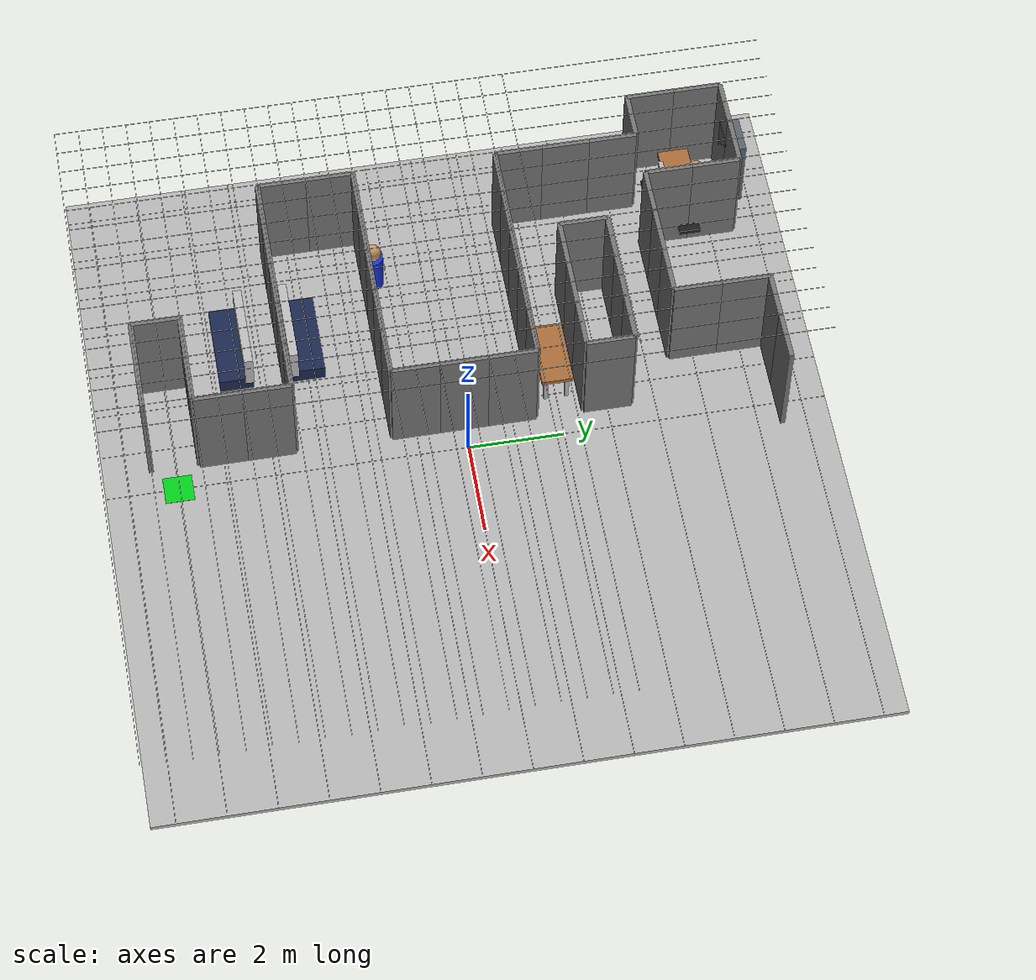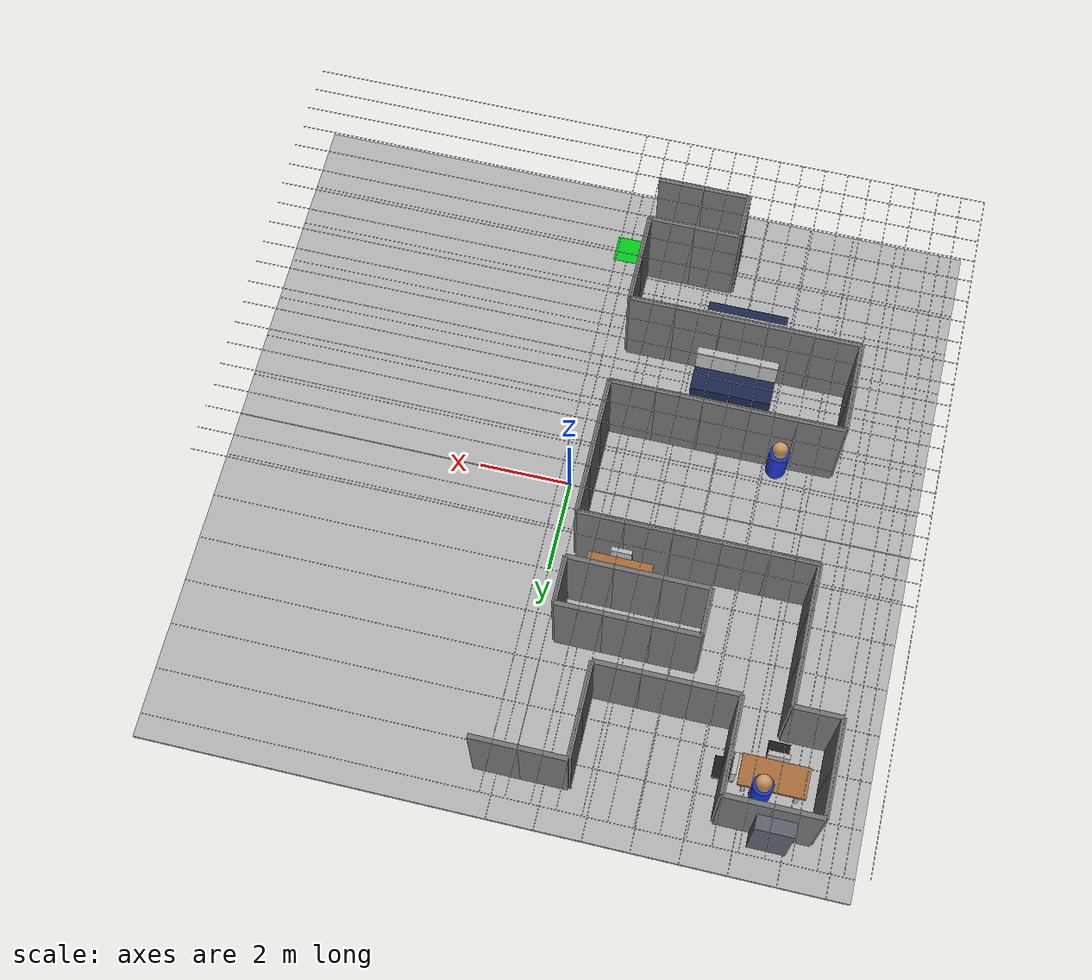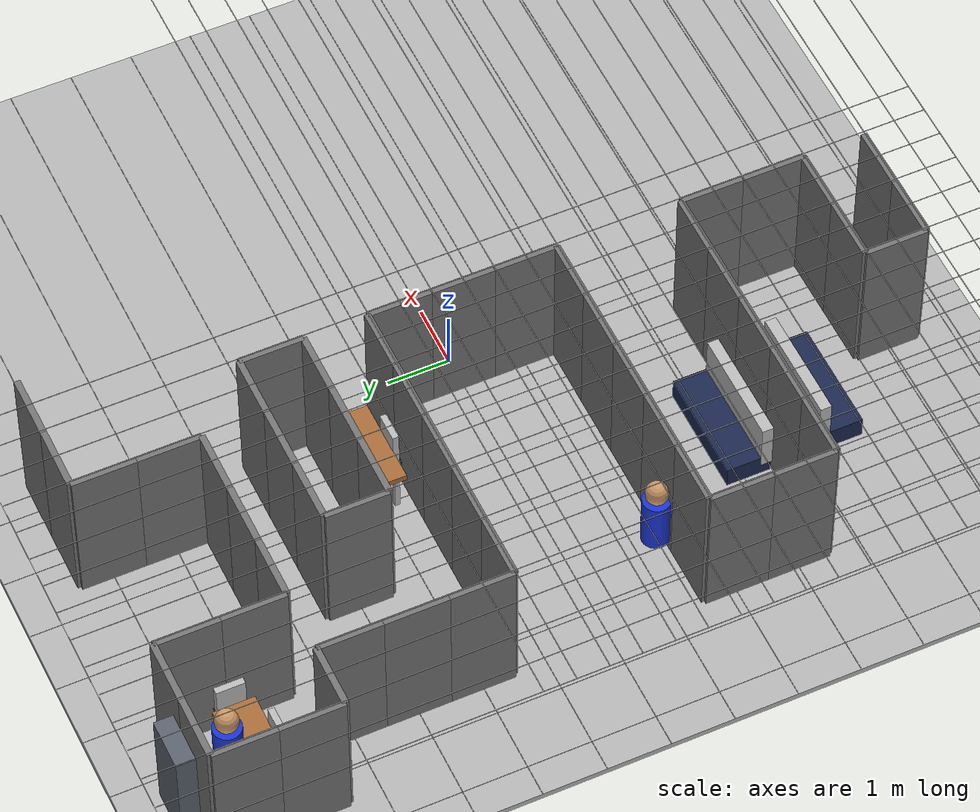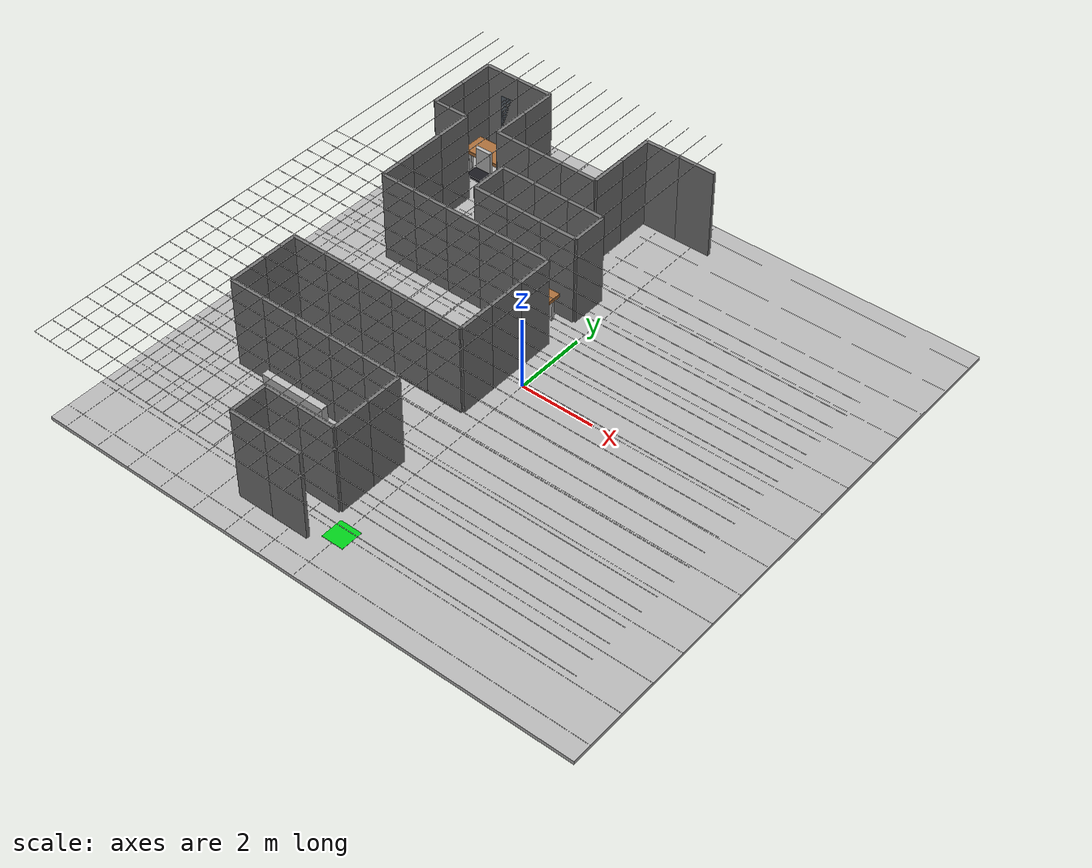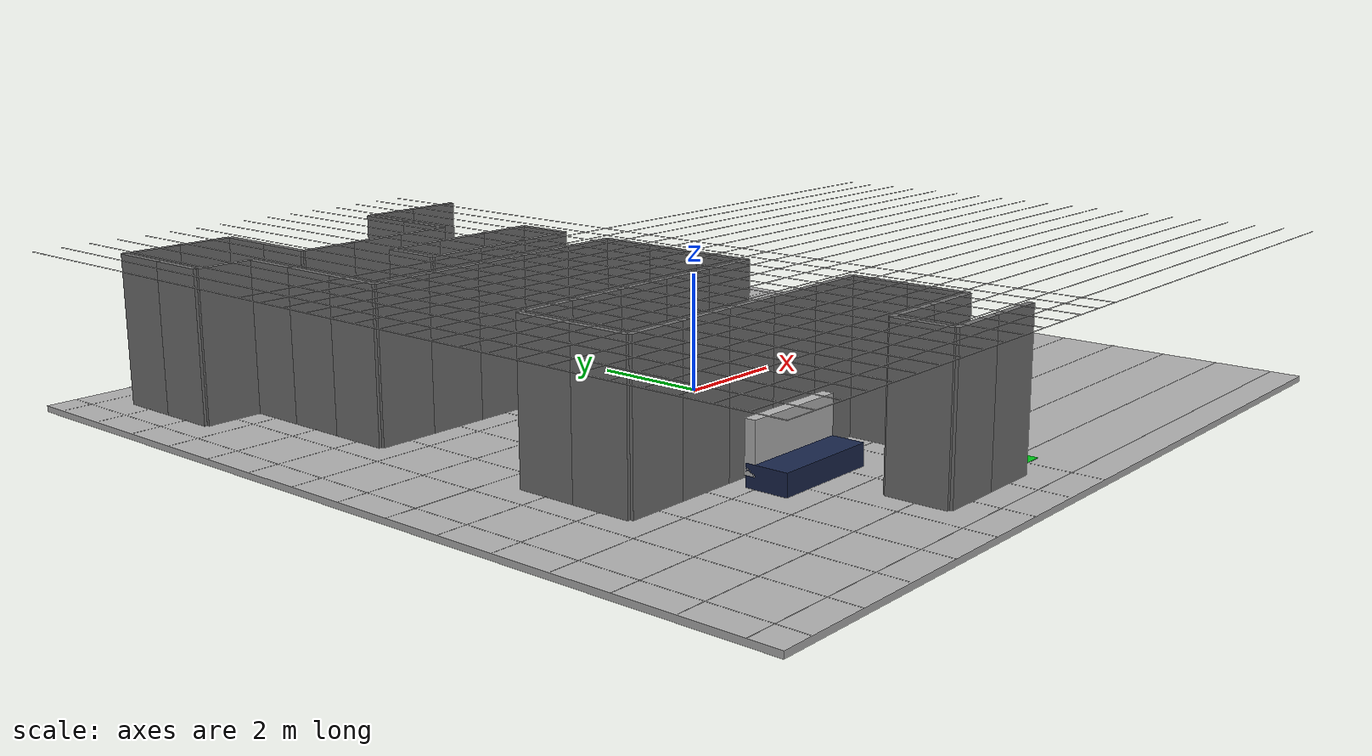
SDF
<sdf version="1.9">
 <world name="nidar_airmouse_building">
  <model name="floor">
   <static>true</static>
   <pose>0 0 -0.05 0 0 0</pose>
   <link name="link">
    <collision name="collision"><geometry><box><size>15 15 0.10</size></box></geometry></collision>
    <visual name="visual">
     <geometry><box><size>15 15 0.10</size></box></geometry>
     <material><ambient>0.65 0.65 0.65 1</ambient><diffuse>0.70 0.70 0.70 1</diffuse></material>
    </visual>
   </link>
  </model>
  <model name="grid_x_0">
   <static>true</static>
   <pose>-7 0 0.006 0 0 0</pose>
   <link name="link">
    <visual name="visual">
     <geometry><box><size>0.008 15 0.002</size></box></geometry>
     <material><ambient>0.25 0.25 0.25 0.35</ambient></material>
    </visual>
   </link>
  </model>
  <model name="grid_x_1">
   <static>true</static>
   <pose>-6 0 0.006 0 0 0</pose>
   <link name="link">
    <visual name="visual">
     <geometry><box><size>0.008 15 0.002</size></box></geometry>
     <material><ambient>0.25 0.25 0.25 0.35</ambient></material>
    </visual>
   </link>
  </model>
  <model name="grid_x_2">
   <static>true</static>
   <pose>-5 0 0.006 0 0 0</pose>
   <link name="link">
    <visual name="visual">
     <geometry><box><size>0.008 15 0.002</size></box></geometry>
     <material><ambient>0.25 0.25 0.25 0.35</ambient></material>
    </visual>
   </link>
  </model>
  <model name="grid_x_3">
   <static>true</static>
   <pose>-4 0 0.006 0 0 0</pose>
   <link name="link">
    <visual name="visual">
     <geometry><box><size>0.008 15 0.002</size></box></geometry>
     <material><ambient>0.25 0.25 0.25 0.35</ambient></material>
    </visual>
   </link>
  </model>
  <model name="grid_x_4">
   <static>true</static>
   <pose>-3 0 0.006 0 0 0</pose>
   <link name="link">
    <visual name="visual">
     <geometry><box><size>0.008 15 0.002</size></box></geometry>
     <material><ambient>0.25 0.25 0.25 0.35</ambient></material>
    </visual>
   </link>
  </model>
  <model name="grid_x_5">
   <static>true</static>
   <pose>-2 0 0.006 0 0 0</pose>
   <link name="link">
    <visual name="visual">
     <geometry><box><size>0.008 15 0.002</size></box></geometry>
     <material><ambient>0.25 0.25 0.25 0.35</ambient></material>
    </visual>
   </link>
  </model>
  <model name="grid_x_6">
   <static>true</static>
   <pose>-1 0 0.006 0 0 0</pose>
   <link name="link">
    <visual name="visual">
     <geometry><box><size>0.008 15 0.002</size></box></geometry>
     <material><ambient>0.25 0.25 0.25 0.35</ambient></material>
    </visual>
   </link>
  </model>
  <model name="grid_x_7">
   <static>true</static>
   <pose>0 0 0.006 0 0 0</pose>
   <link name="link">
    <visual name="visual">
     <geometry><box><size>0.008 15 0.002</size></box></geometry>
     <material><ambient>0.25 0.25 0.25 0.35</ambient></material>
    </visual>
   </link>
  </model>
  <model name="grid_y_15">
   <static>true</static>
   <pose>0 -7 0.007 0 0 0</pose>
   <link name="link">
    <visual name="visual">
     <geometry><box><size>15 0.008 0.002</size></box></geometry>
     <material><ambient>0.25 0.25 0.25 0.35</ambient></material>
    </visual>
   </link>
  </model>
  <model name="grid_y_16">
   <static>true</static>
   <pose>0 -6 0.007 0 0 0</pose>
   <link name="link">
    <visual name="visual">
     <geometry><box><size>15 0.008 0.002</size></box></geometry>
     <material><ambient>0.25 0.25 0.25 0.35</ambient></material>
    </visual>
   </link>
  </model>
  <model name="grid_y_17">
   <static>true</static>
   <pose>0 -5 0.007 0 0 0</pose>
   <link name="link">
    <visual name="visual">
     <geometry><box><size>15 0.008 0.002</size></box></geometry>
     <material><ambient>0.25 0.25 0.25 0.35</ambient></material>
    </visual>
   </link>
  </model>
  <model name="grid_y_18">
   <static>true</static>
   <pose>0 -4 0.007 0 0 0</pose>
   <link name="link">
    <visual name="visual">
     <geometry><box><size>15 0.008 0.002</size></box></geometry>
     <material><ambient>0.25 0.25 0.25 0.35</ambient></material>
    </visual>
   </link>
  </model>
  <model name="grid_y_19">
   <static>true</static>
   <pose>0 -3 0.007 0 0 0</pose>
   <link name="link">
    <visual name="visual">
     <geometry><box><size>15 0.008 0.002</size></box></geometry>
     <material><ambient>0.25 0.25 0.25 0.35</ambient></material>
    </visual>
   </link>
  </model>
  <model name="grid_y_20">
   <static>true</static>
   <pose>0 -2 0.007 0 0 0</pose>
   <link name="link">
    <visual name="visual">
     <geometry><box><size>15 0.008 0.002</size></box></geometry>
     <material><ambient>0.25 0.25 0.25 0.35</ambient></material>
    </visual>
   </link>
  </model>
  <model name="grid_y_21">
   <static>true</static>
   <pose>0 -1 0.007 0 0 0</pose>
   <link name="link">
    <visual name="visual">
     <geometry><box><size>15 0.008 0.002</size></box></geometry>
     <material><ambient>0.25 0.25 0.25 0.35</ambient></material>
    </visual>
   </link>
  </model>
  <model name="grid_y_22">
   <static>true</static>
   <pose>0 0 0.007 0 0 0</pose>
   <link name="link">
    <visual name="visual">
     <geometry><box><size>15 0.008 0.002</size></box></geometry>
     <material><ambient>0.25 0.25 0.25 0.35</ambient></material>
    </visual>
   </link>
  </model>
  <model name="grid_y_23">
   <static>true</static>
   <pose>0 1 0.007 0 0 0</pose>
   <link name="link">
    <visual name="visual">
     <geometry><box><size>15 0.008 0.002</size></box></geometry>
     <material><ambient>0.25 0.25 0.25 0.35</ambient></material>
    </visual>
   </link>
  </model>
  <model name="grid_y_24">
   <static>true</static>
   <pose>0 2 0.007 0 0 0</pose>
   <link name="link">
    <visual name="visual">
     <geometry><box><size>15 0.008 0.002</size></box></geometry>
     <material><ambient>0.25 0.25 0.25 0.35</ambient></material>
    </visual>
   </link>
  </model>
  <model name="grid_y_25">
   <static>true</static>
   <pose>0 3 0.007 0 0 0</pose>
   <link name="link">
    <visual name="visual">
     <geometry><box><size>15 0.008 0.002</size></box></geometry>
     <material><ambient>0.25 0.25 0.25 0.35</ambient></material>
    </visual>
   </link>
  </model>
  <model name="grid_y_26">
   <static>true</static>
   <pose>0 4 0.007 0 0 0</pose>
   <link name="link">
    <visual name="visual">
     <geometry><box><size>15 0.008 0.002</size></box></geometry>
     <material><ambient>0.25 0.25 0.25 0.35</ambient></material>
    </visual>
   </link>
  </model>
  <model name="grid_y_27">
   <static>true</static>
   <pose>0 5 0.007 0 0 0</pose>
   <link name="link">
    <visual name="visual">
     <geometry><box><size>15 0.008 0.002</size></box></geometry>
     <material><ambient>0.25 0.25 0.25 0.35</ambient></material>
    </visual>
   </link>
  </model>
  <model name="grid_y_28">
   <static>true</static>
   <pose>0 6 0.007 0 0 0</pose>
   <link name="link">
    <visual name="visual">
     <geometry><box><size>15 0.008 0.002</size></box></geometry>
     <material><ambient>0.25 0.25 0.25 0.35</ambient></material>
    </visual>
   </link>
  </model>
  <model name="grid_y_29">
   <static>true</static>
   <pose>0 7 0.007 0 0 0</pose>
   <link name="link">
    <visual name="visual">
     <geometry><box><size>15 0.008 0.002</size></box></geometry>
     <material><ambient>0.25 0.25 0.25 0.35</ambient></material>
    </visual>
   </link>
  </model>
  <model name="wall_0">
   <static>true</static>
   <pose>-6.0 6.5 1.25
            0 0 0</pose>
   <link name="link">
    <collision name="collision"><geometry><box><size>1.0 0.1 2.5</size></box></geometry></collision>
    <visual name="visual">
     <geometry><box><size>1.0 0.1 2.5</size></box></geometry>
     <material><ambient>0.35 0.35 0.35 1</ambient><diffuse>0.45 0.45 0.45 1</diffuse></material>
    </visual>
   </link>
  </model>
  <model name="wall_1">
   <static>true</static>
   <pose>-6.5 6.0 1.25
            0 0 0</pose>
   <link name="link">
    <collision name="collision"><geometry><box><size>0.1 1.0 2.5</size></box></geometry></collision>
    <visual name="visual">
     <geometry><box><size>0.1 1.0 2.5</size></box></geometry>
     <material><ambient>0.35 0.35 0.35 1</ambient><diffuse>0.45 0.45 0.45 1</diffuse></material>
    </visual>
   </link>
  </model>
  <model name="wall_2">
   <static>true</static>
   <pose>-5.0 6.5 1.25
            0 0 0</pose>
   <link name="link">
    <collision name="collision"><geometry><box><size>1.0 0.1 2.5</size></box></geometry></collision>
    <visual name="visual">
     <geometry><box><size>1.0 0.1 2.5</size></box></geometry>
     <material><ambient>0.35 0.35 0.35 1</ambient><diffuse>0.45 0.45 0.45 1</diffuse></material>
    </visual>
   </link>
  </model>
  <model name="wall_3">
   <static>true</static>
   <pose>-4.5 6.0 1.25
            0 0 0</pose>
   <link name="link">
    <collision name="collision"><geometry><box><size>0.1 1.0 2.5</size></box></geometry></collision>
    <visual name="visual">
     <geometry><box><size>0.1 1.0 2.5</size></box></geometry>
     <material><ambient>0.35 0.35 0.35 1</ambient><diffuse>0.45 0.45 0.45 1</diffuse></material>
    </visual>
   </link>
  </model>
  <model name="wall_4">
   <static>true</static>
   <pose>-1.0 6.5 1.25
            0 0 0</pose>
   <link name="link">
    <collision name="collision"><geometry><box><size>1.0 0.1 2.5</size></box></geometry></collision>
    <visual name="visual">
     <geometry><box><size>1.0 0.1 2.5</size></box></geometry>
     <material><ambient>0.35 0.35 0.35 1</ambient><diffuse>0.45 0.45 0.45 1</diffuse></material>
    </visual>
   </link>
  </model>
  <model name="wall_5">
   <static>true</static>
   <pose>-1.5 6.0 1.25
            0 0 0</pose>
   <link name="link">
    <collision name="collision"><geometry><box><size>0.1 1.0 2.5</size></box></geometry></collision>
    <visual name="visual">
     <geometry><box><size>0.1 1.0 2.5</size></box></geometry>
     <material><ambient>0.35 0.35 0.35 1</ambient><diffuse>0.45 0.45 0.45 1</diffuse></material>
    </visual>
   </link>
  </model>
  <model name="wall_6">
   <static>true</static>
   <pose>0.0 6.5 1.25
            0 0 0</pose>
   <link name="link">
    <collision name="collision"><geometry><box><size>1.0 0.1 2.5</size></box></geometry></collision>
    <visual name="visual">
     <geometry><box><size>1.0 0.1 2.5</size></box></geometry>
     <material><ambient>0.35 0.35 0.35 1</ambient><diffuse>0.45 0.45 0.45 1</diffuse></material>
    </visual>
   </link>
  </model>
  <model name="wall_12">
   <static>true</static>
   <pose>-6.0 4.5 1.25
            0 0 0</pose>
   <link name="link">
    <collision name="collision"><geometry><box><size>1.0 0.1 2.5</size></box></geometry></collision>
    <visual name="visual">
     <geometry><box><size>1.0 0.1 2.5</size></box></geometry>
     <material><ambient>0.35 0.35 0.35 1</ambient><diffuse>0.45 0.45 0.45 1</diffuse></material>
    </visual>
   </link>
  </model>
  <model name="wall_13">
   <static>true</static>
   <pose>-6.5 5.0 1.25
            0 0 0</pose>
   <link name="link">
    <collision name="collision"><geometry><box><size>0.1 1.0 2.5</size></box></geometry></collision>
    <visual name="visual">
     <geometry><box><size>0.1 1.0 2.5</size></box></geometry>
     <material><ambient>0.35 0.35 0.35 1</ambient><diffuse>0.45 0.45 0.45 1</diffuse></material>
    </visual>
   </link>
  </model>
  <model name="wall_14">
   <static>true</static>
   <pose>-4.5 5.0 1.25
            0 0 0</pose>
   <link name="link">
    <collision name="collision"><geometry><box><size>0.1 1.0 2.5</size></box></geometry></collision>
    <visual name="visual">
     <geometry><box><size>0.1 1.0 2.5</size></box></geometry>
     <material><ambient>0.35 0.35 0.35 1</ambient><diffuse>0.45 0.45 0.45 1</diffuse></material>
    </visual>
   </link>
  </model>
  <model name="wall_15">
   <static>true</static>
   <pose>-1.5 5.0 1.25
            0 0 0</pose>
   <link name="link">
    <collision name="collision"><geometry><box><size>0.1 1.0 2.5</size></box></geometry></collision>
    <visual name="visual">
     <geometry><box><size>0.1 1.0 2.5</size></box></geometry>
     <material><ambient>0.35 0.35 0.35 1</ambient><diffuse>0.45 0.45 0.45 1</diffuse></material>
    </visual>
   </link>
  </model>
  <model name="wall_19">
   <static>true</static>
   <pose>-5.5 4.0 1.25
            0 0 0</pose>
   <link name="link">
    <collision name="collision"><geometry><box><size>0.1 1.0 2.5</size></box></geometry></collision>
    <visual name="visual">
     <geometry><box><size>0.1 1.0 2.5</size></box></geometry>
     <material><ambient>0.35 0.35 0.35 1</ambient><diffuse>0.45 0.45 0.45 1</diffuse></material>
    </visual>
   </link>
  </model>
  <model name="wall_20">
   <static>true</static>
   <pose>-4.0 4.5 1.25
            0 0 0</pose>
   <link name="link">
    <collision name="collision"><geometry><box><size>1.0 0.1 2.5</size></box></geometry></collision>
    <visual name="visual">
     <geometry><box><size>1.0 0.1 2.5</size></box></geometry>
     <material><ambient>0.35 0.35 0.35 1</ambient><diffuse>0.45 0.45 0.45 1</diffuse></material>
    </visual>
   </link>
  </model>
  <model name="wall_21">
   <static>true</static>
   <pose>-3.0 4.5 1.25
            0 0 0</pose>
   <link name="link">
    <collision name="collision"><geometry><box><size>1.0 0.1 2.5</size></box></geometry></collision>
    <visual name="visual">
     <geometry><box><size>1.0 0.1 2.5</size></box></geometry>
     <material><ambient>0.35 0.35 0.35 1</ambient><diffuse>0.45 0.45 0.45 1</diffuse></material>
    </visual>
   </link>
  </model>
  <model name="wall_22">
   <static>true</static>
   <pose>-3.0 3.5 1.25
            0 0 0</pose>
   <link name="link">
    <collision name="collision"><geometry><box><size>1.0 0.1 2.5</size></box></geometry></collision>
    <visual name="visual">
     <geometry><box><size>1.0 0.1 2.5</size></box></geometry>
     <material><ambient>0.35 0.35 0.35 1</ambient><diffuse>0.45 0.45 0.45 1</diffuse></material>
    </visual>
   </link>
  </model>
  <model name="wall_23">
   <static>true</static>
   <pose>-2.0 4.5 1.25
            0 0 0</pose>
   <link name="link">
    <collision name="collision"><geometry><box><size>1.0 0.1 2.5</size></box></geometry></collision>
    <visual name="visual">
     <geometry><box><size>1.0 0.1 2.5</size></box></geometry>
     <material><ambient>0.35 0.35 0.35 1</ambient><diffuse>0.45 0.45 0.45 1</diffuse></material>
    </visual>
   </link>
  </model>
  <model name="wall_24">
   <static>true</static>
   <pose>-2.0 3.5 1.25
            0 0 0</pose>
   <link name="link">
    <collision name="collision"><geometry><box><size>1.0 0.1 2.5</size></box></geometry></collision>
    <visual name="visual">
     <geometry><box><size>1.0 0.1 2.5</size></box></geometry>
     <material><ambient>0.35 0.35 0.35 1</ambient><diffuse>0.45 0.45 0.45 1</diffuse></material>
    </visual>
   </link>
  </model>
  <model name="wall_25">
   <static>true</static>
   <pose>-1.0 3.5 1.25
            0 0 0</pose>
   <link name="link">
    <collision name="collision"><geometry><box><size>1.0 0.1 2.5</size></box></geometry></collision>
    <visual name="visual">
     <geometry><box><size>1.0 0.1 2.5</size></box></geometry>
     <material><ambient>0.35 0.35 0.35 1</ambient><diffuse>0.45 0.45 0.45 1</diffuse></material>
    </visual>
   </link>
  </model>
  <model name="wall_33">
   <static>true</static>
   <pose>-5.5 3.0 1.25
            0 0 0</pose>
   <link name="link">
    <collision name="collision"><geometry><box><size>0.1 1.0 2.5</size></box></geometry></collision>
    <visual name="visual">
     <geometry><box><size>0.1 1.0 2.5</size></box></geometry>
     <material><ambient>0.35 0.35 0.35 1</ambient><diffuse>0.45 0.45 0.45 1</diffuse></material>
    </visual>
   </link>
  </model>
  <model name="wall_34">
   <static>true</static>
   <pose>-3.5 3.0 1.25
            0 0 0</pose>
   <link name="link">
    <collision name="collision"><geometry><box><size>0.1 1.0 2.5</size></box></geometry></collision>
    <visual name="visual">
     <geometry><box><size>0.1 1.0 2.5</size></box></geometry>
     <material><ambient>0.35 0.35 0.35 1</ambient><diffuse>0.45 0.45 0.45 1</diffuse></material>
    </visual>
   </link>
  </model>
  <model name="wall_35">
   <static>true</static>
   <pose>-0.5 3.0 1.25
            0 0 0</pose>
   <link name="link">
    <collision name="collision"><geometry><box><size>0.1 1.0 2.5</size></box></geometry></collision>
    <visual name="visual">
     <geometry><box><size>0.1 1.0 2.5</size></box></geometry>
     <material><ambient>0.35 0.35 0.35 1</ambient><diffuse>0.45 0.45 0.45 1</diffuse></material>
    </visual>
   </link>
  </model>
  <model name="wall_39">
   <static>true</static>
   <pose>-5.0 1.5 1.25
            0 0 0</pose>
   <link name="link">
    <collision name="collision"><geometry><box><size>1.0 0.1 2.5</size></box></geometry></collision>
    <visual name="visual">
     <geometry><box><size>1.0 0.1 2.5</size></box></geometry>
     <material><ambient>0.35 0.35 0.35 1</ambient><diffuse>0.45 0.45 0.45 1</diffuse></material>
    </visual>
   </link>
  </model>
  <model name="wall_40">
   <static>true</static>
   <pose>-5.5 2.0 1.25
            0 0 0</pose>
   <link name="link">
    <collision name="collision"><geometry><box><size>0.1 1.0 2.5</size></box></geometry></collision>
    <visual name="visual">
     <geometry><box><size>0.1 1.0 2.5</size></box></geometry>
     <material><ambient>0.35 0.35 0.35 1</ambient><diffuse>0.45 0.45 0.45 1</diffuse></material>
    </visual>
   </link>
  </model>
  <model name="wall_41">
   <static>true</static>
   <pose>-4.0 1.5 1.25
            0 0 0</pose>
   <link name="link">
    <collision name="collision"><geometry><box><size>1.0 0.1 2.5</size></box></geometry></collision>
    <visual name="visual">
     <geometry><box><size>1.0 0.1 2.5</size></box></geometry>
     <material><ambient>0.35 0.35 0.35 1</ambient><diffuse>0.45 0.45 0.45 1</diffuse></material>
    </visual>
   </link>
  </model>
  <model name="wall_42">
   <static>true</static>
   <pose>-3.0 2.5 1.25
            0 0 0</pose>
   <link name="link">
    <collision name="collision"><geometry><box><size>1.0 0.1 2.5</size></box></geometry></collision>
    <visual name="visual">
     <geometry><box><size>1.0 0.1 2.5</size></box></geometry>
     <material><ambient>0.35 0.35 0.35 1</ambient><diffuse>0.45 0.45 0.45 1</diffuse></material>
    </visual>
   </link>
  </model>
  <model name="wall_43">
   <static>true</static>
   <pose>-3.0 1.5 1.25
            0 0 0</pose>
   <link name="link">
    <collision name="collision"><geometry><box><size>1.0 0.1 2.5</size></box></geometry></collision>
    <visual name="visual">
     <geometry><box><size>1.0 0.1 2.5</size></box></geometry>
     <material><ambient>0.35 0.35 0.35 1</ambient><diffuse>0.45 0.45 0.45 1</diffuse></material>
    </visual>
   </link>
  </model>
  <model name="wall_44">
   <static>true</static>
   <pose>-2.0 2.5 1.25
            0 0 0</pose>
   <link name="link">
    <collision name="collision"><geometry><box><size>1.0 0.1 2.5</size></box></geometry></collision>
    <visual name="visual">
     <geometry><box><size>1.0 0.1 2.5</size></box></geometry>
     <material><ambient>0.35 0.35 0.35 1</ambient><diffuse>0.45 0.45 0.45 1</diffuse></material>
    </visual>
   </link>
  </model>
  <model name="wall_45">
   <static>true</static>
   <pose>-2.0 1.5 1.25
            0 0 0</pose>
   <link name="link">
    <collision name="collision"><geometry><box><size>1.0 0.1 2.5</size></box></geometry></collision>
    <visual name="visual">
     <geometry><box><size>1.0 0.1 2.5</size></box></geometry>
     <material><ambient>0.35 0.35 0.35 1</ambient><diffuse>0.45 0.45 0.45 1</diffuse></material>
    </visual>
   </link>
  </model>
  <model name="wall_46">
   <static>true</static>
   <pose>-1.0 2.5 1.25
            0 0 0</pose>
   <link name="link">
    <collision name="collision"><geometry><box><size>1.0 0.1 2.5</size></box></geometry></collision>
    <visual name="visual">
     <geometry><box><size>1.0 0.1 2.5</size></box></geometry>
     <material><ambient>0.35 0.35 0.35 1</ambient><diffuse>0.45 0.45 0.45 1</diffuse></material>
    </visual>
   </link>
  </model>
  <model name="wall_47">
   <static>true</static>
   <pose>-1.0 1.5 1.25
            0 0 0</pose>
   <link name="link">
    <collision name="collision"><geometry><box><size>1.0 0.1 2.5</size></box></geometry></collision>
    <visual name="visual">
     <geometry><box><size>1.0 0.1 2.5</size></box></geometry>
     <material><ambient>0.35 0.35 0.35 1</ambient><diffuse>0.45 0.45 0.45 1</diffuse></material>
    </visual>
   </link>
  </model>
  <model name="wall_55">
   <static>true</static>
   <pose>-0.5 1.0 1.25
            0 0 0</pose>
   <link name="link">
    <collision name="collision"><geometry><box><size>0.1 1.0 2.5</size></box></geometry></collision>
    <visual name="visual">
     <geometry><box><size>0.1 1.0 2.5</size></box></geometry>
     <material><ambient>0.35 0.35 0.35 1</ambient><diffuse>0.45 0.45 0.45 1</diffuse></material>
    </visual>
   </link>
  </model>
  <model name="wall_59">
   <static>true</static>
   <pose>-0.5 0.0 1.25
            0 0 0</pose>
   <link name="link">
    <collision name="collision"><geometry><box><size>0.1 1.0 2.5</size></box></geometry></collision>
    <visual name="visual">
     <geometry><box><size>0.1 1.0 2.5</size></box></geometry>
     <material><ambient>0.35 0.35 0.35 1</ambient><diffuse>0.45 0.45 0.45 1</diffuse></material>
    </visual>
   </link>
  </model>
  <model name="wall_63">
   <static>true</static>
   <pose>-0.5 -1.0 1.25
            0 0 0</pose>
   <link name="link">
    <collision name="collision"><geometry><box><size>0.1 1.0 2.5</size></box></geometry></collision>
    <visual name="visual">
     <geometry><box><size>0.1 1.0 2.5</size></box></geometry>
     <material><ambient>0.35 0.35 0.35 1</ambient><diffuse>0.45 0.45 0.45 1</diffuse></material>
    </visual>
   </link>
  </model>
  <model name="wall_71">
   <static>true</static>
   <pose>-5.0 -1.5 1.25
            0 0 0</pose>
   <link name="link">
    <collision name="collision"><geometry><box><size>1.0 0.1 2.5</size></box></geometry></collision>
    <visual name="visual">
     <geometry><box><size>1.0 0.1 2.5</size></box></geometry>
     <material><ambient>0.35 0.35 0.35 1</ambient><diffuse>0.45 0.45 0.45 1</diffuse></material>
    </visual>
   </link>
  </model>
  <model name="wall_72">
   <static>true</static>
   <pose>-5.5 -2.0 1.25
            0 0 0</pose>
   <link name="link">
    <collision name="collision"><geometry><box><size>0.1 1.0 2.5</size></box></geometry></collision>
    <visual name="visual">
     <geometry><box><size>0.1 1.0 2.5</size></box></geometry>
     <material><ambient>0.35 0.35 0.35 1</ambient><diffuse>0.45 0.45 0.45 1</diffuse></material>
    </visual>
   </link>
  </model>
  <model name="wall_73">
   <static>true</static>
   <pose>-4.0 -1.5 1.25
            0 0 0</pose>
   <link name="link">
    <collision name="collision"><geometry><box><size>1.0 0.1 2.5</size></box></geometry></collision>
    <visual name="visual">
     <geometry><box><size>1.0 0.1 2.5</size></box></geometry>
     <material><ambient>0.35 0.35 0.35 1</ambient><diffuse>0.45 0.45 0.45 1</diffuse></material>
    </visual>
   </link>
  </model>
  <model name="wall_74">
   <static>true</static>
   <pose>-3.0 -1.5 1.25
            0 0 0</pose>
   <link name="link">
    <collision name="collision"><geometry><box><size>1.0 0.1 2.5</size></box></geometry></collision>
    <visual name="visual">
     <geometry><box><size>1.0 0.1 2.5</size></box></geometry>
     <material><ambient>0.35 0.35 0.35 1</ambient><diffuse>0.45 0.45 0.45 1</diffuse></material>
    </visual>
   </link>
  </model>
  <model name="wall_75">
   <static>true</static>
   <pose>-2.0 -1.5 1.25
            0 0 0</pose>
   <link name="link">
    <collision name="collision"><geometry><box><size>1.0 0.1 2.5</size></box></geometry></collision>
    <visual name="visual">
     <geometry><box><size>1.0 0.1 2.5</size></box></geometry>
     <material><ambient>0.35 0.35 0.35 1</ambient><diffuse>0.45 0.45 0.45 1</diffuse></material>
    </visual>
   </link>
  </model>
  <model name="wall_76">
   <static>true</static>
   <pose>-1.0 -1.5 1.25
            0 0 0</pose>
   <link name="link">
    <collision name="collision"><geometry><box><size>1.0 0.1 2.5</size></box></geometry></collision>
    <visual name="visual">
     <geometry><box><size>1.0 0.1 2.5</size></box></geometry>
     <material><ambient>0.35 0.35 0.35 1</ambient><diffuse>0.45 0.45 0.45 1</diffuse></material>
    </visual>
   </link>
  </model>
  <model name="wall_80">
   <static>true</static>
   <pose>-5.0 -3.5 1.25
            0 0 0</pose>
   <link name="link">
    <collision name="collision"><geometry><box><size>1.0 0.1 2.5</size></box></geometry></collision>
    <visual name="visual">
     <geometry><box><size>1.0 0.1 2.5</size></box></geometry>
     <material><ambient>0.35 0.35 0.35 1</ambient><diffuse>0.45 0.45 0.45 1</diffuse></material>
    </visual>
   </link>
  </model>
  <model name="wall_81">
   <static>true</static>
   <pose>-5.5 -3.0 1.25
            0 0 0</pose>
   <link name="link">
    <collision name="collision"><geometry><box><size>0.1 1.0 2.5</size></box></geometry></collision>
    <visual name="visual">
     <geometry><box><size>0.1 1.0 2.5</size></box></geometry>
     <material><ambient>0.35 0.35 0.35 1</ambient><diffuse>0.45 0.45 0.45 1</diffuse></material>
    </visual>
   </link>
  </model>
  <model name="wall_82">
   <static>true</static>
   <pose>-4.0 -3.5 1.25
            0 0 0</pose>
   <link name="link">
    <collision name="collision"><geometry><box><size>1.0 0.1 2.5</size></box></geometry></collision>
    <visual name="visual">
     <geometry><box><size>1.0 0.1 2.5</size></box></geometry>
     <material><ambient>0.35 0.35 0.35 1</ambient><diffuse>0.45 0.45 0.45 1</diffuse></material>
    </visual>
   </link>
  </model>
  <model name="wall_83">
   <static>true</static>
   <pose>-3.0 -3.5 1.25
            0 0 0</pose>
   <link name="link">
    <collision name="collision"><geometry><box><size>1.0 0.1 2.5</size></box></geometry></collision>
    <visual name="visual">
     <geometry><box><size>1.0 0.1 2.5</size></box></geometry>
     <material><ambient>0.35 0.35 0.35 1</ambient><diffuse>0.45 0.45 0.45 1</diffuse></material>
    </visual>
   </link>
  </model>
  <model name="wall_84">
   <static>true</static>
   <pose>-2.0 -3.5 1.25
            0 0 0</pose>
   <link name="link">
    <collision name="collision"><geometry><box><size>1.0 0.1 2.5</size></box></geometry></collision>
    <visual name="visual">
     <geometry><box><size>1.0 0.1 2.5</size></box></geometry>
     <material><ambient>0.35 0.35 0.35 1</ambient><diffuse>0.45 0.45 0.45 1</diffuse></material>
    </visual>
   </link>
  </model>
  <model name="wall_85">
   <static>true</static>
   <pose>-1.0 -3.5 1.25
            0 0 0</pose>
   <link name="link">
    <collision name="collision"><geometry><box><size>1.0 0.1 2.5</size></box></geometry></collision>
    <visual name="visual">
     <geometry><box><size>1.0 0.1 2.5</size></box></geometry>
     <material><ambient>0.35 0.35 0.35 1</ambient><diffuse>0.45 0.45 0.45 1</diffuse></material>
    </visual>
   </link>
  </model>
  <model name="wall_92">
   <static>true</static>
   <pose>-0.5 -4.0 1.25
            0 0 0</pose>
   <link name="link">
    <collision name="collision"><geometry><box><size>0.1 1.0 2.5</size></box></geometry></collision>
    <visual name="visual">
     <geometry><box><size>0.1 1.0 2.5</size></box></geometry>
     <material><ambient>0.35 0.35 0.35 1</ambient><diffuse>0.45 0.45 0.45 1</diffuse></material>
    </visual>
   </link>
  </model>
  <model name="wall_99">
   <static>true</static>
   <pose>-0.5 -5.0 1.25
            0 0 0</pose>
   <link name="link">
    <collision name="collision"><geometry><box><size>0.1 1.0 2.5</size></box></geometry></collision>
    <visual name="visual">
     <geometry><box><size>0.1 1.0 2.5</size></box></geometry>
     <material><ambient>0.35 0.35 0.35 1</ambient><diffuse>0.45 0.45 0.45 1</diffuse></material>
    </visual>
   </link>
  </model>
  <model name="wall_101">
   <static>true</static>
   <pose>-2.0 -5.5 1.25
            0 0 0</pose>
   <link name="link">
    <collision name="collision"><geometry><box><size>1.0 0.1 2.5</size></box></geometry></collision>
    <visual name="visual">
     <geometry><box><size>1.0 0.1 2.5</size></box></geometry>
     <material><ambient>0.35 0.35 0.35 1</ambient><diffuse>0.45 0.45 0.45 1</diffuse></material>
    </visual>
   </link>
  </model>
  <model name="wall_102">
   <static>true</static>
   <pose>-2.0 -6.5 1.25
            0 0 0</pose>
   <link name="link">
    <collision name="collision"><geometry><box><size>1.0 0.1 2.5</size></box></geometry></collision>
    <visual name="visual">
     <geometry><box><size>1.0 0.1 2.5</size></box></geometry>
     <material><ambient>0.35 0.35 0.35 1</ambient><diffuse>0.45 0.45 0.45 1</diffuse></material>
    </visual>
   </link>
  </model>
  <model name="wall_103">
   <static>true</static>
   <pose>-2.5 -6.0 1.25
            0 0 0</pose>
   <link name="link">
    <collision name="collision"><geometry><box><size>0.1 1.0 2.5</size></box></geometry></collision>
    <visual name="visual">
     <geometry><box><size>0.1 1.0 2.5</size></box></geometry>
     <material><ambient>0.35 0.35 0.35 1</ambient><diffuse>0.45 0.45 0.45 1</diffuse></material>
    </visual>
   </link>
  </model>
  <model name="wall_104">
   <static>true</static>
   <pose>-1.0 -5.5 1.25
            0 0 0</pose>
   <link name="link">
    <collision name="collision"><geometry><box><size>1.0 0.1 2.5</size></box></geometry></collision>
    <visual name="visual">
     <geometry><box><size>1.0 0.1 2.5</size></box></geometry>
     <material><ambient>0.35 0.35 0.35 1</ambient><diffuse>0.45 0.45 0.45 1</diffuse></material>
    </visual>
   </link>
  </model>
  <model name="wall_105">
   <static>true</static>
   <pose>-1.0 -6.5 1.25
            0 0 0</pose>
   <link name="link">
    <collision name="collision"><geometry><box><size>1.0 0.1 2.5</size></box></geometry></collision>
    <visual name="visual">
     <geometry><box><size>1.0 0.1 2.5</size></box></geometry>
     <material><ambient>0.35 0.35 0.35 1</ambient><diffuse>0.45 0.45 0.45 1</diffuse></material>
    </visual>
   </link>
  </model>
  <model name="desk_01">
   <static>true</static>
   <pose>-5.5 5.5 0
            0 0 0.0</pose>
   <link name="link">
    <visual name="desktop">
     <pose>0 0 0.75
                    0 0 0</pose>
     <geometry><box><size>1.4 0.65 0.10</size></box></geometry>
     <material><ambient>0.55 0.35 0.18 1</ambient><diffuse>0.65 0.42 0.22 1</diffuse></material>
    </visual>
    <visual name="leg1">
     <pose>-0.55 -0.22 0.37 0 0 0</pose>
     <geometry><box><size>0.08 0.08 0.74</size></box></geometry>
    </visual>
    <visual name="leg2">
     <pose>0.55 -0.22 0.37 0 0 0</pose>
     <geometry><box><size>0.08 0.08 0.74</size></box></geometry>
    </visual>
    <visual name="leg3">
     <pose>-0.55 0.22 0.37 0 0 0</pose>
     <geometry><box><size>0.08 0.08 0.74</size></box></geometry>
    </visual>
    <visual name="leg4">
     <pose>0.55 0.22 0.37 0 0 0</pose>
     <geometry><box><size>0.08 0.08 0.74</size></box></geometry>
    </visual>
    <collision name="desktop_collision">
     <pose>0 0 0.75
                    0 0 0</pose>
     <geometry><box><size>1.4 0.65 0.10</size></box></geometry>
    </collision>
   </link>
  </model>
  <model name="chair_01">
   <static>true</static>
   <pose>-5.5 4.95 0
            0 0 0.0</pose>
   <link name="link">
    <visual name="seat">
     <pose>0 0 0.45
                    0 0 0</pose>
     <geometry><box><size>0.45 0.45 0.10</size></box></geometry>
     <material><ambient>0.08 0.08 0.10 1</ambient><diffuse>0.10 0.10 0.12 1</diffuse></material>
    </visual>
    <visual name="back">
     <pose>0 0.18 0.78
                    0 0 0</pose>
     <geometry><box><size>0.45 0.10 0.65</size></box></geometry>
    </visual>
    <visual name="support">
     <pose>0 0 0.22
                    0 0 0</pose>
     <geometry><cylinder><radius>0.05</radius><length>0.45</length></cylinder></geometry>
    </visual>
    <collision name="collision">
     <pose>0 0 0.45
                    0 0 0</pose>
     <geometry><box><size>0.45 0.45 0.10</size></box></geometry>
    </collision>
   </link>
  </model>
  <model name="chair_02">
   <static>true</static>
   <pose>-4.5 5.5 0
            0 0 1.57</pose>
   <link name="link">
    <visual name="seat">
     <pose>0 0 0.45
                    0 0 0</pose>
     <geometry><box><size>0.45 0.45 0.10</size></box></geometry>
     <material><ambient>0.08 0.08 0.10 1</ambient><diffuse>0.10 0.10 0.12 1</diffuse></material>
    </visual>
    <visual name="back">
     <pose>0 0.18 0.78
                    0 0 0</pose>
     <geometry><box><size>0.45 0.10 0.65</size></box></geometry>
    </visual>
    <visual name="support">
     <pose>0 0 0.22
                    0 0 0</pose>
     <geometry><cylinder><radius>0.05</radius><length>0.45</length></cylinder></geometry>
    </visual>
    <collision name="collision">
     <pose>0 0 0.45
                    0 0 0</pose>
     <geometry><box><size>0.45 0.45 0.10</size></box></geometry>
    </collision>
   </link>
  </model>
  <model name="cabinet_01">
   <static>true</static>
   <pose>-5.65 6.65 0.9
            0 0 0</pose>
   <link name="link">
    <collision name="collision"><geometry><box><size>0.8 0.4 1.8</size></box></geometry></collision>
    <visual name="visual">
     <geometry><box><size>0.8 0.4 1.8</size></box></geometry>
     <material><ambient>0.35 0.38 0.42 1</ambient><diffuse>0.35 0.38 0.42 1</diffuse></material>
    </visual>
   </link>
  </model>
  <model name="desk_04">
   <static>true</static>
   <pose>-1.5 2.0 0
            0 0 0.0</pose>
   <link name="link">
    <visual name="desktop">
     <pose>0 0 0.75
                    0 0 0</pose>
     <geometry><box><size>1.4 0.65 0.10</size></box></geometry>
     <material><ambient>0.55 0.35 0.18 1</ambient><diffuse>0.65 0.42 0.22 1</diffuse></material>
    </visual>
    <visual name="leg1">
     <pose>-0.55 -0.22 0.37 0 0 0</pose>
     <geometry><box><size>0.08 0.08 0.74</size></box></geometry>
    </visual>
    <visual name="leg2">
     <pose>0.55 -0.22 0.37 0 0 0</pose>
     <geometry><box><size>0.08 0.08 0.74</size></box></geometry>
    </visual>
    <visual name="leg3">
     <pose>-0.55 0.22 0.37 0 0 0</pose>
     <geometry><box><size>0.08 0.08 0.74</size></box></geometry>
    </visual>
    <visual name="leg4">
     <pose>0.55 0.22 0.37 0 0 0</pose>
     <geometry><box><size>0.08 0.08 0.74</size></box></geometry>
    </visual>
    <collision name="desktop_collision">
     <pose>0 0 0.75
                    0 0 0</pose>
     <geometry><box><size>1.4 0.65 0.10</size></box></geometry>
    </collision>
   </link>
  </model>
  <model name="chair_06">
   <static>true</static>
   <pose>-1.5 1.45 0
            0 0 0.0</pose>
   <link name="link">
    <visual name="seat">
     <pose>0 0 0.45
                    0 0 0</pose>
     <geometry><box><size>0.45 0.45 0.10</size></box></geometry>
     <material><ambient>0.08 0.08 0.10 1</ambient><diffuse>0.10 0.10 0.12 1</diffuse></material>
    </visual>
    <visual name="back">
     <pose>0 0.18 0.78
                    0 0 0</pose>
     <geometry><box><size>0.45 0.10 0.65</size></box></geometry>
    </visual>
    <visual name="support">
     <pose>0 0 0.22
                    0 0 0</pose>
     <geometry><cylinder><radius>0.05</radius><length>0.45</length></cylinder></geometry>
    </visual>
    <collision name="collision">
     <pose>0 0 0.45
                    0 0 0</pose>
     <geometry><box><size>0.45 0.45 0.10</size></box></geometry>
    </collision>
   </link>
  </model>
  <model name="sofa_01">
   <static>true</static>
   <pose>-3.0 -4.5 0
            0 0 0.0</pose>
   <link name="link">
    <visual name="seat">
     <pose>0 0 0.35
                    0 0 0</pose>
     <geometry><box><size>1.8 0.7 0.35</size></box></geometry>
     <material><ambient>0.08 0.12 0.22 1</ambient><diffuse>0.10 0.15 0.30 1</diffuse></material>
    </visual>
    <visual name="back">
     <pose>0 0.28 0.75
                    0 0 0</pose>
     <geometry><box><size>1.8 0.18 0.8</size></box></geometry>
    </visual>
    <collision name="seat_collision">
     <pose>0 0 0.35
                    0 0 0</pose>
     <geometry><box><size>1.8 0.7 0.35</size></box></geometry>
    </collision>
   </link>
  </model>
  <model name="sofa_02">
   <static>true</static>
   <pose>-3.0 -3.0 0
            0 0 3.14159</pose>
   <link name="link">
    <visual name="seat">
     <pose>0 0 0.35
                    0 0 0</pose>
     <geometry><box><size>1.8 0.7 0.35</size></box></geometry>
     <material><ambient>0.08 0.12 0.22 1</ambient><diffuse>0.10 0.15 0.30 1</diffuse></material>
    </visual>
    <visual name="back">
     <pose>0 0.28 0.75
                    0 0 0</pose>
     <geometry><box><size>1.8 0.18 0.8</size></box></geometry>
    </visual>
    <collision name="seat_collision">
     <pose>0 0 0.35
                    0 0 0</pose>
     <geometry><box><size>1.8 0.7 0.35</size></box></geometry>
    </collision>
   </link>
  </model>
  <model name="entry_exit">
   <static>true</static>
   <pose>0.0 -6.0 0.01
            0 0 0</pose>
   <link name="link">
    <visual name="visual">
     <geometry><box><size>0.60 0.60 0.01</size></box></geometry>
     <material><ambient>0.0 0.8 0.1 1</ambient><diffuse>0.0 0.8 0.1 1</diffuse></material>
    </visual>
   </link>
  </model>
  <model name="survivor_01">
   <static>true</static>
   <pose>-5.3 5.8 0.0
                0 0 0</pose>
   <link name="body">
    <visual name="torso">
     <pose>0 0 0.65
                        0 0 0</pose>
     <geometry><cylinder><radius>0.22</radius><length>0.9</length></cylinder></geometry>
     <material><ambient>0.1 0.2 0.8 1</ambient><diffuse>0.1 0.2 0.8 1</diffuse></material>
    </visual>
    <visual name="head">
     <pose>0 0 1.25
                        0 0 0</pose>
     <geometry><sphere><radius>0.18</radius></sphere></geometry>
     <material><ambient>0.8 0.6 0.4 1</ambient><diffuse>0.8 0.6 0.4 1</diffuse></material>
    </visual>
   </link>
  </model>
  <model name="survivor_04">
   <static>true</static>
   <pose>-4.3 -1.3 0.0
                0 0 0</pose>
   <link name="body">
    <visual name="torso">
     <pose>0 0 0.65
                        0 0 0</pose>
     <geometry><cylinder><radius>0.22</radius><length>0.9</length></cylinder></geometry>
     <material><ambient>0.1 0.2 0.8 1</ambient><diffuse>0.1 0.2 0.8 1</diffuse></material>
    </visual>
    <visual name="head">
     <pose>0 0 1.25
                        0 0 0</pose>
     <geometry><sphere><radius>0.18</radius></sphere></geometry>
     <material><ambient>0.8 0.6 0.4 1</ambient><diffuse>0.8 0.6 0.4 1</diffuse></material>
    </visual>
   </link>
  </model>
  <model name="net_x_0">
   <static>true</static>
   <pose>-7.5 0 2.55
                0 0 0</pose>
   <link name="link">
    <visual name="visual"><geometry><box><size>0.008 15 0.008</size></box></geometry></visual>
   </link>
  </model>
  <model name="net_x_1">
   <static>true</static>
   <pose>-7.0 0 2.55
                0 0 0</pose>
   <link name="link">
    <visual name="visual"><geometry><box><size>0.008 15 0.008</size></box></geometry></visual>
   </link>
  </model>
  <model name="net_x_2">
   <static>true</static>
   <pose>-6.5 0 2.55
                0 0 0</pose>
   <link name="link">
    <visual name="visual"><geometry><box><size>0.008 15 0.008</size></box></geometry></visual>
   </link>
  </model>
  <model name="net_x_3">
   <static>true</static>
   <pose>-6.0 0 2.55
                0 0 0</pose>
   <link name="link">
    <visual name="visual"><geometry><box><size>0.008 15 0.008</size></box></geometry></visual>
   </link>
  </model>
  <model name="net_x_4">
   <static>true</static>
   <pose>-5.5 0 2.55
                0 0 0</pose>
   <link name="link">
    <visual name="visual"><geometry><box><size>0.008 15 0.008</size></box></geometry></visual>
   </link>
  </model>
  <model name="net_x_5">
   <static>true</static>
   <pose>-5.0 0 2.55
                0 0 0</pose>
   <link name="link">
    <visual name="visual"><geometry><box><size>0.008 15 0.008</size></box></geometry></visual>
   </link>
  </model>
  <model name="net_x_6">
   <static>true</static>
   <pose>-4.5 0 2.55
                0 0 0</pose>
   <link name="link">
    <visual name="visual"><geometry><box><size>0.008 15 0.008</size></box></geometry></visual>
   </link>
  </model>
  <model name="net_x_7">
   <static>true</static>
   <pose>-4.0 0 2.55
                0 0 0</pose>
   <link name="link">
    <visual name="visual"><geometry><box><size>0.008 15 0.008</size></box></geometry></visual>
   </link>
  </model>
  <model name="net_x_8">
   <static>true</static>
   <pose>-3.5 0 2.55
                0 0 0</pose>
   <link name="link">
    <visual name="visual"><geometry><box><size>0.008 15 0.008</size></box></geometry></visual>
   </link>
  </model>
  <model name="net_x_9">
   <static>true</static>
   <pose>-3.0 0 2.55
                0 0 0</pose>
   <link name="link">
    <visual name="visual"><geometry><box><size>0.008 15 0.008</size></box></geometry></visual>
   </link>
  </model>
  <model name="net_x_10">
   <static>true</static>
   <pose>-2.5 0 2.55
                0 0 0</pose>
   <link name="link">
    <visual name="visual"><geometry><box><size>0.008 15 0.008</size></box></geometry></visual>
   </link>
  </model>
  <model name="net_x_11">
   <static>true</static>
   <pose>-2.0 0 2.55
                0 0 0</pose>
   <link name="link">
    <visual name="visual"><geometry><box><size>0.008 15 0.008</size></box></geometry></visual>
   </link>
  </model>
  <model name="net_x_12">
   <static>true</static>
   <pose>-1.5 0 2.55
                0 0 0</pose>
   <link name="link">
    <visual name="visual"><geometry><box><size>0.008 15 0.008</size></box></geometry></visual>
   </link>
  </model>
  <model name="net_x_13">
   <static>true</static>
   <pose>-1.0 0 2.55
                0 0 0</pose>
   <link name="link">
    <visual name="visual"><geometry><box><size>0.008 15 0.008</size></box></geometry></visual>
   </link>
  </model>
  <model name="net_x_14">
   <static>true</static>
   <pose>-0.5 0 2.55
                0 0 0</pose>
   <link name="link">
    <visual name="visual"><geometry><box><size>0.008 15 0.008</size></box></geometry></visual>
   </link>
  </model>
  <model name="net_x_15">
   <static>true</static>
   <pose>0.0 0 2.55
                0 0 0</pose>
   <link name="link">
    <visual name="visual"><geometry><box><size>0.008 15 0.008</size></box></geometry></visual>
   </link>
  </model>
  <model name="net_y_31">
   <static>true</static>
   <pose>0 -7.5 2.55
                0 0 0</pose>
   <link name="link">
    <visual name="visual"><geometry><box><size>15 0.008 0.008</size></box></geometry></visual>
   </link>
  </model>
  <model name="net_y_32">
   <static>true</static>
   <pose>0 -7.0 2.55
                0 0 0</pose>
   <link name="link">
    <visual name="visual"><geometry><box><size>15 0.008 0.008</size></box></geometry></visual>
   </link>
  </model>
  <model name="net_y_33">
   <static>true</static>
   <pose>0 -6.5 2.55
                0 0 0</pose>
   <link name="link">
    <visual name="visual"><geometry><box><size>15 0.008 0.008</size></box></geometry></visual>
   </link>
  </model>
  <model name="net_y_34">
   <static>true</static>
   <pose>0 -6.0 2.55
                0 0 0</pose>
   <link name="link">
    <visual name="visual"><geometry><box><size>15 0.008 0.008</size></box></geometry></visual>
   </link>
  </model>
  <model name="net_y_35">
   <static>true</static>
   <pose>0 -5.5 2.55
                0 0 0</pose>
   <link name="link">
    <visual name="visual"><geometry><box><size>15 0.008 0.008</size></box></geometry></visual>
   </link>
  </model>
  <model name="net_y_36">
   <static>true</static>
   <pose>0 -5.0 2.55
                0 0 0</pose>
   <link name="link">
    <visual name="visual"><geometry><box><size>15 0.008 0.008</size></box></geometry></visual>
   </link>
  </model>
  <model name="net_y_37">
   <static>true</static>
   <pose>0 -4.5 2.55
                0 0 0</pose>
   <link name="link">
    <visual name="visual"><geometry><box><size>15 0.008 0.008</size></box></geometry></visual>
   </link>
  </model>
  <model name="net_y_38">
   <static>true</static>
   <pose>0 -4.0 2.55
                0 0 0</pose>
   <link name="link">
    <visual name="visual"><geometry><box><size>15 0.008 0.008</size></box></geometry></visual>
   </link>
  </model>
  <model name="net_y_39">
   <static>true</static>
   <pose>0 -3.5 2.55
                0 0 0</pose>
   <link name="link">
    <visual name="visual"><geometry><box><size>15 0.008 0.008</size></box></geometry></visual>
   </link>
  </model>
  <model name="net_y_40">
   <static>true</static>
   <pose>0 -3.0 2.55
                0 0 0</pose>
   <link name="link">
    <visual name="visual"><geometry><box><size>15 0.008 0.008</size></box></geometry></visual>
   </link>
  </model>
  <model name="net_y_41">
   <static>true</static>
   <pose>0 -2.5 2.55
                0 0 0</pose>
   <link name="link">
    <visual name="visual"><geometry><box><size>15 0.008 0.008</size></box></geometry></visual>
   </link>
  </model>
  <model name="net_y_42">
   <static>true</static>
   <pose>0 -2.0 2.55
                0 0 0</pose>
   <link name="link">
    <visual name="visual"><geometry><box><size>15 0.008 0.008</size></box></geometry></visual>
   </link>
  </model>
  <model name="net_y_43">
   <static>true</static>
   <pose>0 -1.5 2.55
                0 0 0</pose>
   <link name="link">
    <visual name="visual"><geometry><box><size>15 0.008 0.008</size></box></geometry></visual>
   </link>
  </model>
  <model name="net_y_44">
   <static>true</static>
   <pose>0 -1.0 2.55
                0 0 0</pose>
   <link name="link">
    <visual name="visual"><geometry><box><size>15 0.008 0.008</size></box></geometry></visual>
   </link>
  </model>
  <model name="net_y_45">
   <static>true</static>
   <pose>0 -0.5 2.55
                0 0 0</pose>
   <link name="link">
    <visual name="visual"><geometry><box><size>15 0.008 0.008</size></box></geometry></visual>
   </link>
  </model>
  <model name="net_y_46">
   <static>true</static>
   <pose>0 0.0 2.55
                0 0 0</pose>
   <link name="link">
    <visual name="visual"><geometry><box><size>15 0.008 0.008</size></box></geometry></visual>
   </link>
  </model>
  <model name="net_y_47">
   <static>true</static>
   <pose>0 0.5 2.55
                0 0 0</pose>
   <link name="link">
    <visual name="visual"><geometry><box><size>15 0.008 0.008</size></box></geometry></visual>
   </link>
  </model>
  <model name="net_y_48">
   <static>true</static>
   <pose>0 1.0 2.55
                0 0 0</pose>
   <link name="link">
    <visual name="visual"><geometry><box><size>15 0.008 0.008</size></box></geometry></visual>
   </link>
  </model>
  <model name="net_y_49">
   <static>true</static>
   <pose>0 1.5 2.55
                0 0 0</pose>
   <link name="link">
    <visual name="visual"><geometry><box><size>15 0.008 0.008</size></box></geometry></visual>
   </link>
  </model>
  <model name="net_y_50">
   <static>true</static>
   <pose>0 2.0 2.55
                0 0 0</pose>
   <link name="link">
    <visual name="visual"><geometry><box><size>15 0.008 0.008</size></box></geometry></visual>
   </link>
  </model>
 </world>
</sdf>
